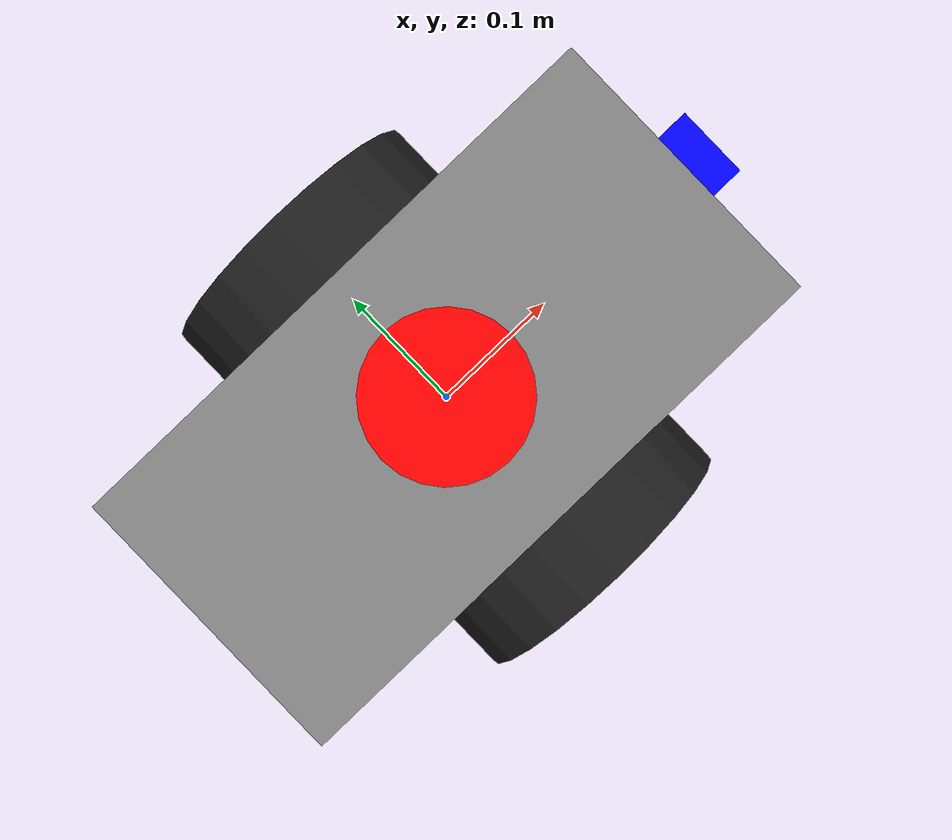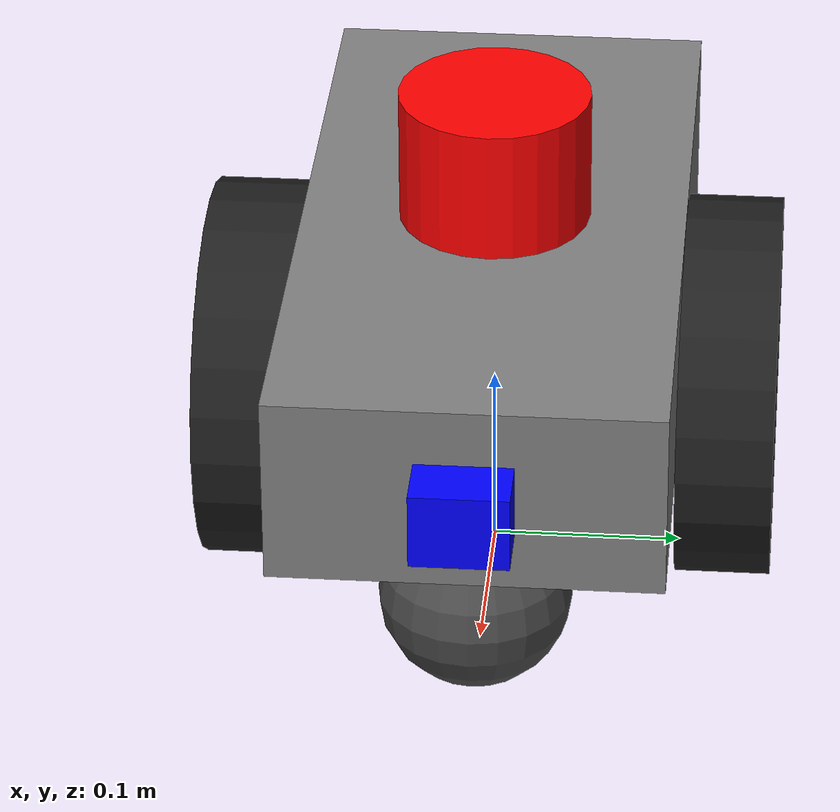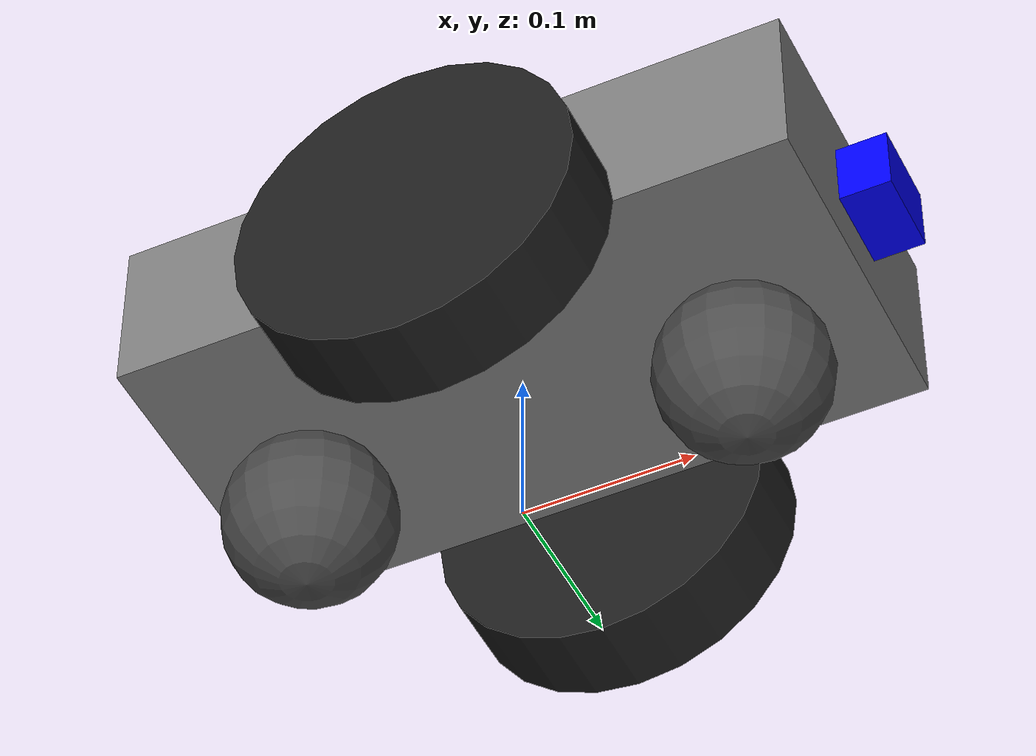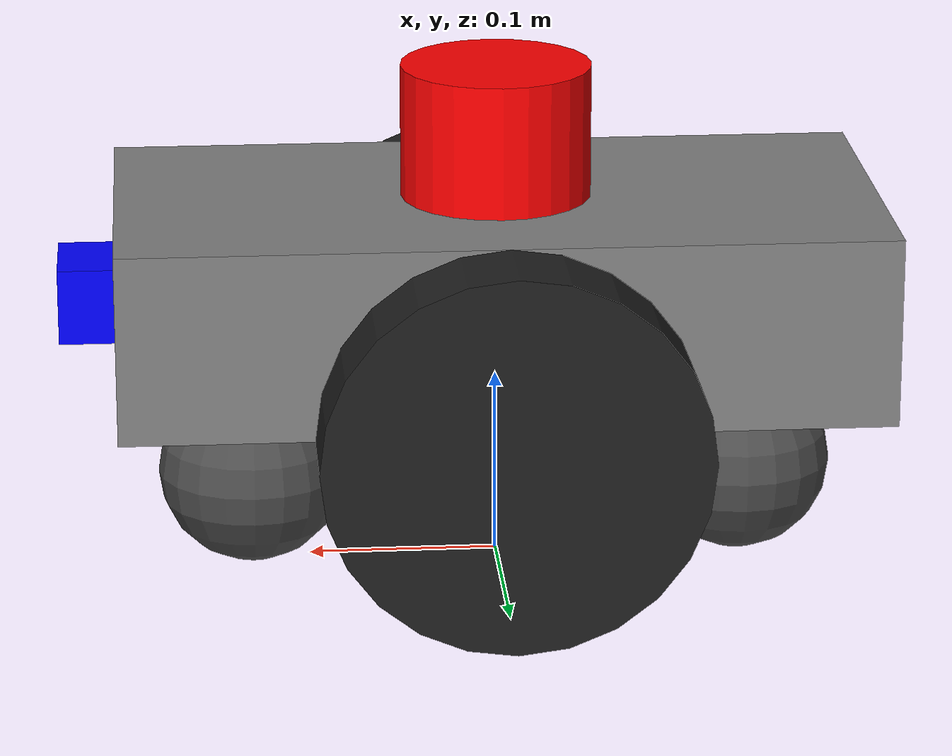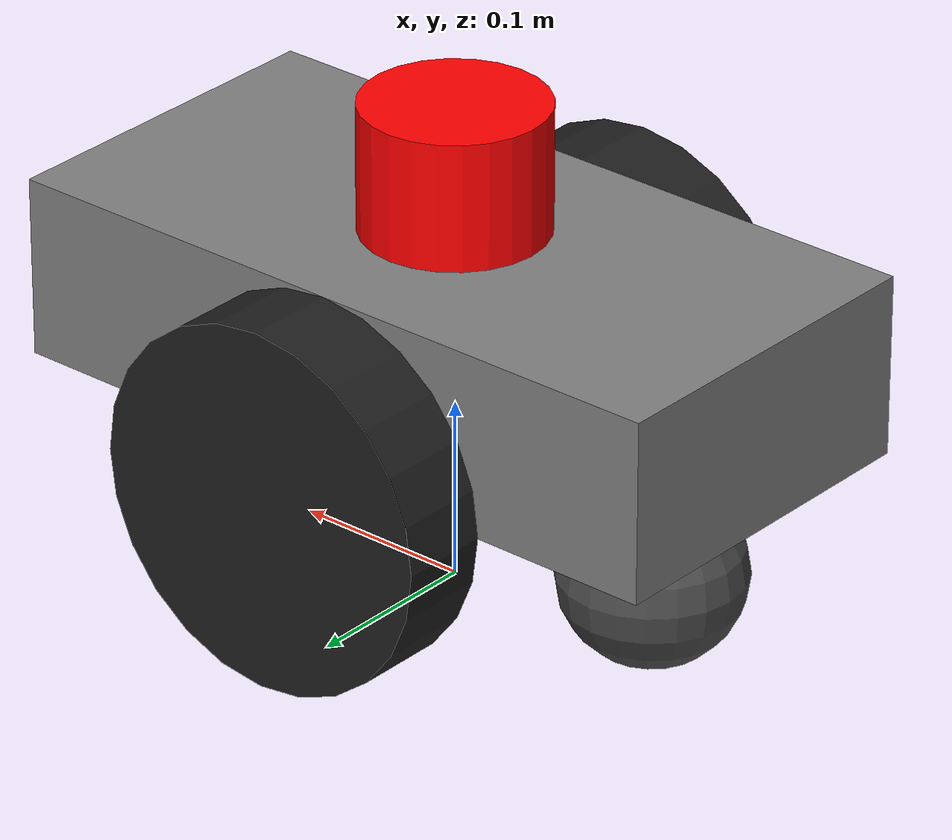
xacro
<?xml version="1.0"?>
<robot name="my_robot" xmlns:xacro="http://www.ros.org/wiki/xacro">

  <!-- Shared dimensional properties (must come first) -->
  <xacro:include filename="$(find my_robot_description)/urdf/common/robot_properties.xacro"/>

  <!-- Robot base, chassis, and caster wheels -->
  <xacro:include filename="$(find my_robot_description)/urdf/base/base.xacro"/>
  <xacro:include filename="$(find my_robot_description)/urdf/base/base.gazebo.xacro"/>

  <!-- Robot Controls -->
  <xacro:include filename="$(find my_robot_description)/urdf/base/base.ros2_control.xacro"/>

  <!-- Driven wheel macro -->
  <xacro:include filename="$(find my_robot_description)/urdf/wheels/wheel.xacro"/>
  <xacro:include filename="$(find my_robot_description)/urdf/wheels/wheel.gazebo.xacro"/>

  <!-- Instantiate the two driven wheels (left = +Y, right = -Y) -->
  <xacro:wheel prefix="left" side="1"/>
  <xacro:wheel prefix="right" side="-1"/>

  <!-- Sensors -->
  <xacro:include filename="$(find my_robot_description)/urdf/sensors/lidar.xacro"/>
  <xacro:include filename="$(find my_robot_description)/urdf/sensors/lidar.gazebo.xacro"/>
  <xacro:include filename="$(find my_robot_description)/urdf/sensors/camera.xacro"/>
  <xacro:include filename="$(find my_robot_description)/urdf/sensors/camera.gazebo.xacro"/>

</robot>

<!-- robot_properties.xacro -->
<robot xmlns:xacro="http://www.ros.org/wiki/xacro" name="robot_properties">

  <!-- Chassis dimensions (box: length x width x height) -->
  <xacro:property name="chassis_length" value="0.4"/>
  <xacro:property name="chassis_width" value="0.2"/>
  <xacro:property name="chassis_height" value="0.1"/>
  <xacro:property name="chassis_mass" value="15.0"/>

  <!-- Driven wheel dimensions (cylinder: radius and length, length = thickness) -->
  <xacro:property name="wheel_radius" value="0.1"/>
  <xacro:property name="wheel_length" value="0.05"/>
  <xacro:property name="wheel_mass" value="2.0"/>

  <!-- Caster wheel dimensions (sphere) -->
  <xacro:property name="caster_radius" value="0.05"/>
  <xacro:property name="caster_mass" value="0.5"/>
  <xacro:property name="caster_inset" value="0.02"/>

  <!-- Lidar dimensions (cylinder mounted upright) -->
  <xacro:property name="lidar_radius" value="0.05"/>
  <xacro:property name="lidar_height" value="0.07"/>
  <xacro:property name="lidar_mass" value="0.2"/>

  <!-- Camera dimensions (box: x=depth, y=width, z=height) -->
  <xacro:property name="camera_size_x" value="0.03"/>
  <xacro:property name="camera_size_y" value="0.05"/>
  <xacro:property name="camera_size_z" value="0.04"/>
  <xacro:property name="camera_mass" value="0.1"/>

  <!-- Derived heights -->
  <!-- chassis frame sits at wheel-axle level, so wheels mount at chassis bottom -->
  <xacro:property name="chassis_z" value="${wheel_radius + chassis_height/2}"/>

</robot>

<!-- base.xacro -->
<robot xmlns:xacro="http://www.ros.org/wiki/xacro" name="base">

  <xacro:include filename="$(find my_robot_description)/urdf/wheels/caster.xacro"/>

  <!-- Robot footprint: navigation reference frame at ground level -->
  <link name="robot_footprint"/>

  <!-- Lift chassis frame to wheel-axle height + half chassis -->
  <joint name="robot_footprint_to_chassis_joint" type="fixed">
    <origin xyz="0 0 ${chassis_z}" rpy="0 0 0"/>
    <parent link="robot_footprint"/>
    <child link="chassis"/>
  </joint>

  <!-- Chassis link: frame at the geometric center of the box -->
  <link name="chassis">
    <inertial>
      <mass value="${chassis_mass}"/>
      <origin xyz="0 0 0" rpy="0 0 0"/>
      <inertia
          ixx="${chassis_mass * (chassis_width**2 + chassis_height**2) / 12}"
          ixy="0"
          ixz="0"
          iyy="${chassis_mass * (chassis_length**2 + chassis_height**2) / 12}"
          iyz="0"
          izz="${chassis_mass * (chassis_length**2 + chassis_width**2) / 12}"/>
    </inertial>

    <visual>
      <origin xyz="0 0 0" rpy="0 0 0"/>
      <geometry>
        <box size="${chassis_length} ${chassis_width} ${chassis_height}"/>
      </geometry>
      <material name="steel">
        <color rgba="0.5 0.5 0.5 1.0"/>
      </material>
    </visual>

    <collision>
      <origin xyz="0 0 0" rpy="0 0 0"/>
      <geometry>
        <box size="${chassis_length} ${chassis_width} ${chassis_height}"/>
      </geometry>
    </collision>
  </link>

  <!-- Front and back casters, placed inside the chassis footprint -->
  <xacro:caster prefix="front" x_offset="${chassis_length/2 - caster_radius - caster_inset}"/>
  <xacro:caster prefix="back" x_offset="${-(chassis_length/2 - caster_radius - caster_inset)}"/>

</robot>

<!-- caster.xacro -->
<robot xmlns:xacro="http://www.ros.org/wiki/xacro" name="caster">

  <!-- Caster macro: passive sphere that touches the ground -->
  <xacro:macro name="caster" params="prefix x_offset">
    <link name="${prefix}_caster">
      <inertial>
        <mass value="${caster_mass}"/>
        <origin xyz="0 0 0" rpy="0 0 0"/>
        <inertia
            ixx="${2.0/5.0 * caster_mass * caster_radius**2}"
            ixy="0"
            ixz="0"
            iyy="${2.0/5.0 * caster_mass * caster_radius**2}"
            iyz="0"
            izz="${2.0/5.0 * caster_mass * caster_radius**2}"/>
      </inertial>

      <visual>
        <origin xyz="0 0 0" rpy="0 0 0"/>
        <geometry>
          <sphere radius="${caster_radius}"/>
        </geometry>
        <material name="grey">
          <color rgba="0.3 0.3 0.3 1.0"/>
        </material>
      </visual>

      <collision>
        <origin xyz="0 0 0" rpy="0 0 0"/>
        <geometry>
          <sphere radius="${caster_radius}"/>
        </geometry>
      </collision>
    </link>

    <joint name="chassis_to_${prefix}_caster_joint" type="fixed">
      <origin xyz="${x_offset} 0 ${-(chassis_height/2 + (wheel_radius - caster_radius))}" rpy="0 0 0"/>
      <parent link="chassis"/>
      <child link="${prefix}_caster"/>
    </joint>
  </xacro:macro>

</robot>

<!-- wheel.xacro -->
<robot xmlns:xacro="http://www.ros.org/wiki/xacro" name="wheel">

  <xacro:macro name="wheel" params="prefix side">

    <!-- Wheel link: frame at the cylinder's geometric center -->
    <link name="${prefix}_wheel">
      <inertial>
        <mass value="${wheel_mass}"/>
        <origin xyz="0 0 0" rpy="0 0 0"/>
        <inertia
            ixx="${wheel_mass * wheel_radius**2 / 4 + wheel_mass * wheel_length**2 / 12}"
            ixy="0"
            ixz="0"
            iyy="${wheel_mass * wheel_radius**2 / 2}"
            iyz="0"
            izz="${wheel_mass * wheel_radius**2 / 4 + wheel_mass * wheel_length**2 / 12}"/>
      </inertial>

      <visual>
        <!-- rotate cylinder 90° about X so its axis is along Y -->
        <origin xyz="0 0 0" rpy="1.5708 0 0"/>
        <geometry>
          <cylinder radius="${wheel_radius}" length="${wheel_length}"/>
        </geometry>
        <material name="black" />
      </visual>

      <collision>
        <origin xyz="0 0 0" rpy="1.5708 0 0"/>
        <geometry>
          <cylinder radius="${wheel_radius}" length="${wheel_length}"/>
        </geometry>
      </collision>
    </link>

    <joint name="chassis_to_${prefix}_wheel_joint" type="continuous">
      <origin xyz="0 ${side * (chassis_width/2 + wheel_length/2)} ${-chassis_height/2}" rpy="0 0 0"/>
      <parent link="chassis"/>
      <child link="${prefix}_wheel"/>
      <axis xyz="0 1 0"/>
      <limit effort="10.0" velocity="10.0"/>   <!-- Nm and rad/s — used by ros2_control -->
      <dynamics damping="0.1" friction="0.1"/> <!-- optional; used by sim and fake hardware -->
    </joint>

  </xacro:macro>

  <!-- Gazebo wheel materials and friction -->
  <gazebo reference="left_wheel">
    <material>Gazebo/Green</material>
    <mu1>0.8</mu1>
    <mu2>0.8</mu2>
  </gazebo>

  <gazebo reference="right_wheel">
    <material>Gazebo/Green</material>
    <mu1>0.8</mu1>
    <mu2>0.8</mu2>
  </gazebo>

</robot>

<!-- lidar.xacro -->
<robot xmlns:xacro="http://www.ros.org/wiki/xacro" name="lidar">

  <!-- Lidar link: frame at the cylinder's geometric center -->
  <link name="lidar">
    <inertial>
      <mass value="${lidar_mass}"/>
      <origin xyz="0 0 0" rpy="0 0 0"/>
      <inertia
          ixx="${lidar_mass * (3*lidar_radius**2 + lidar_height**2) / 12}"
          ixy="0"
          ixz="0"
          iyy="${lidar_mass * (3*lidar_radius**2 + lidar_height**2) / 12}"
          iyz="0"
          izz="${lidar_mass * lidar_radius**2 / 2}"/>
    </inertial>

    <visual>
      <origin xyz="0 0 0" rpy="0 0 0"/>
      <geometry>
        <cylinder radius="${lidar_radius}" length="${lidar_height}"/>
      </geometry>
      <material name="red">
        <color rgba="1.0 0.0 0.0 1.0"/>
      </material>
    </visual>

    <collision>
      <origin xyz="0 0 0" rpy="0 0 0"/>
      <geometry>
        <cylinder radius="${lidar_radius}" length="${lidar_height}"/>
      </geometry>
    </collision>
  </link>

  <!--
    Lidar joint: mount on top of chassis.
      z-offset = chassis_height/2 + lidar_height/2
        (lidar bottom flush with chassis top)
  -->
  <joint name="chassis_to_lidar_joint" type="fixed">
    <origin xyz="0 0 ${chassis_height/2 + lidar_height/2}" rpy="0 0 0"/>
    <parent link="chassis"/>
    <child link="lidar"/>
  </joint>

</robot>

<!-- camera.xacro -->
<robot xmlns:xacro="http://www.ros.org/wiki/xacro" name="camera">

  <!-- Camera link: frame at the box's geometric center -->
  <link name="camera">
    <inertial>
      <mass value="${camera_mass}"/>
      <origin xyz="0 0 0" rpy="0 0 0"/>
      <inertia
          ixx="${camera_mass * (camera_size_y**2 + camera_size_z**2) / 12}"
          ixy="0"
          ixz="0"
          iyy="${camera_mass * (camera_size_x**2 + camera_size_z**2) / 12}"
          iyz="0"
          izz="${camera_mass * (camera_size_x**2 + camera_size_y**2) / 12}"/>
    </inertial>

    <visual>
      <origin xyz="0 0 0" rpy="0 0 0"/>
      <geometry>
        <box size="${camera_size_x} ${camera_size_y} ${camera_size_z}"/>
      </geometry>
      <material name="blue">
        <color rgba="0.0 0.0 1.0 1.0"/>
      </material>
    </visual>

    <collision>
      <origin xyz="0 0 0" rpy="0 0 0"/>
      <geometry>
        <box size="${camera_size_x} ${camera_size_y} ${camera_size_z}"/>
      </geometry>
    </collision>
  </link>

  <!--
    Camera joint: mount flush against chassis front face.
      x-offset = chassis_length/2 + camera_size_x/2
      z-offset = 0 (vertically centered on chassis)
  -->
  <joint name="chassis_to_camera_joint" type="fixed">
    <origin xyz="${chassis_length/2 + camera_size_x/2} 0 0" rpy="0 0 0"/>
    <parent link="chassis"/>
    <child link="camera"/>
  </joint>

  <!-- Camera optical frame: ROS convention (Z forward, X right, Y down) -->
  <link name="camera_optical_frame"/>

  <joint name="camera_to_optical_joint" type="fixed">
    <origin xyz="0 0 0" rpy="-1.5708 0 -1.5708"/>
    <parent link="camera"/>
    <child link="camera_optical_frame"/>
  </joint>

</robot>
